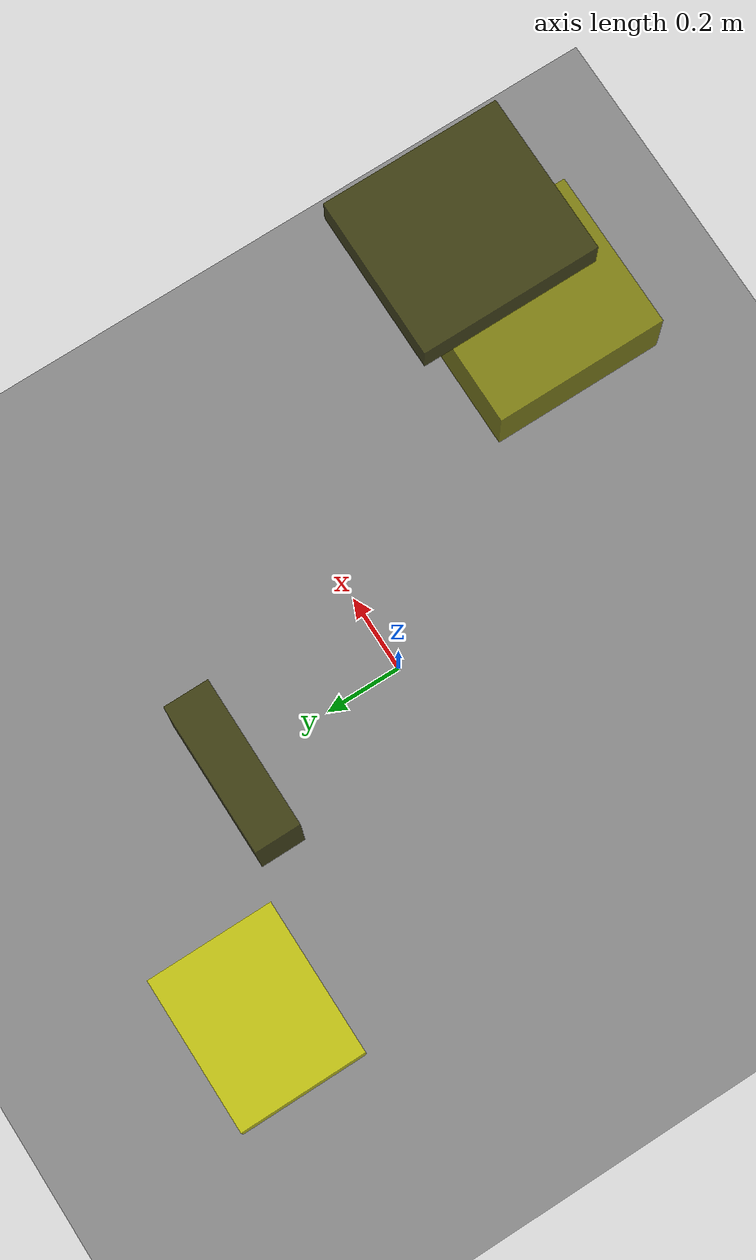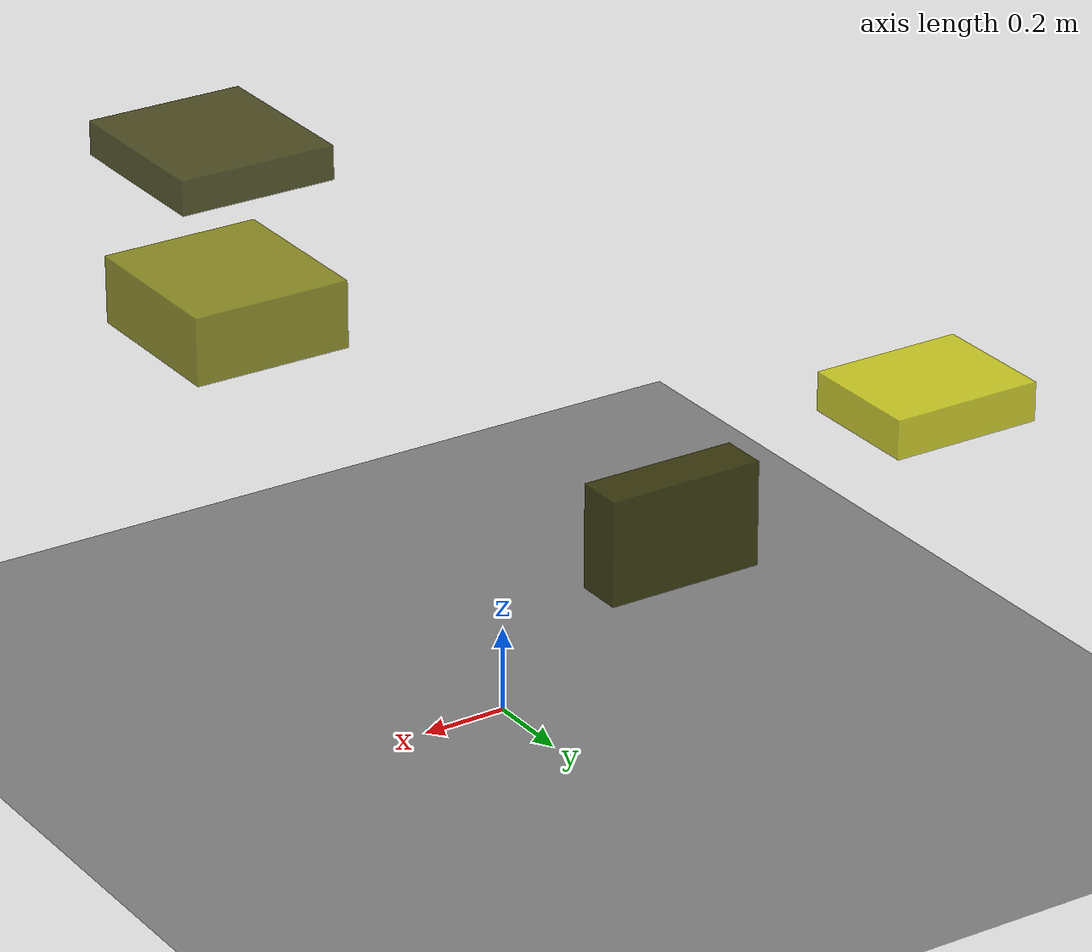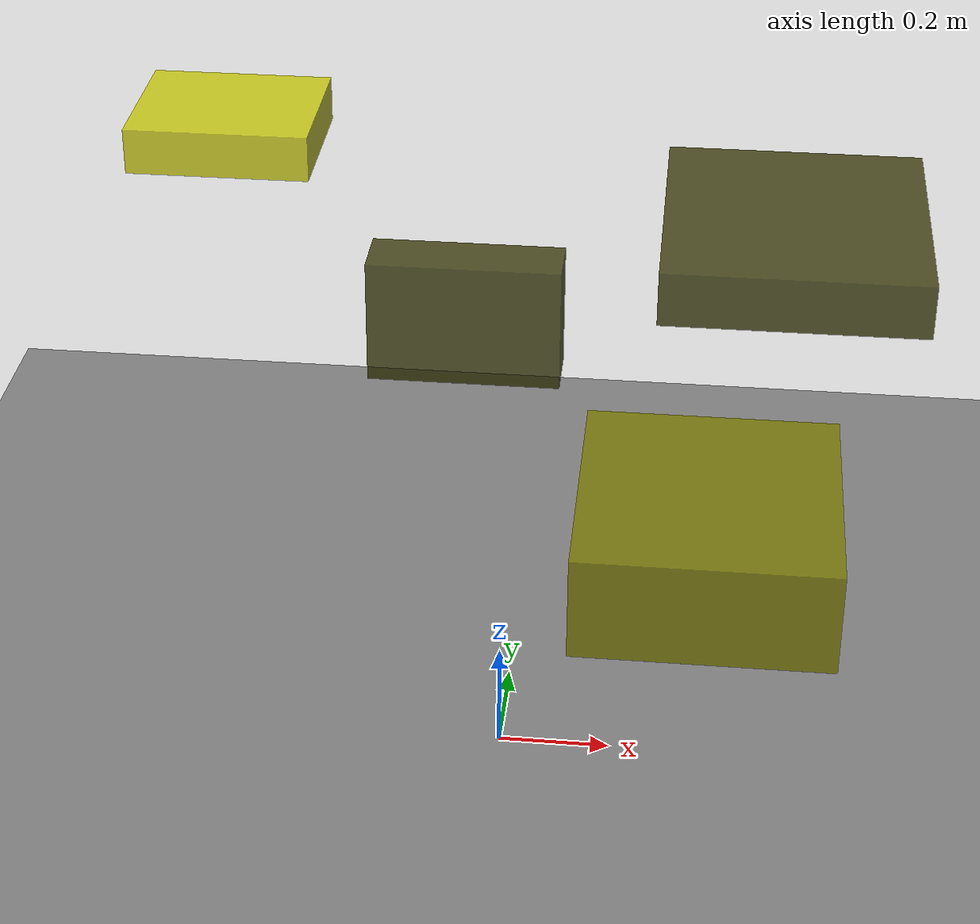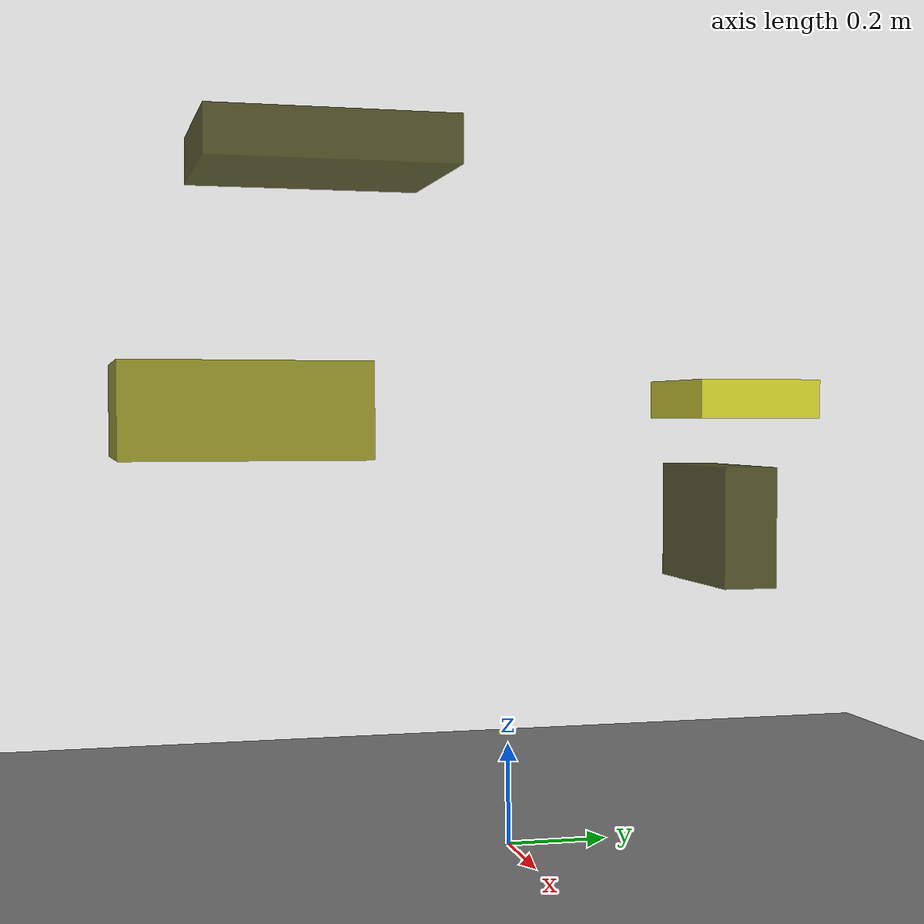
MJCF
<?xml version="1.0"?>
<mujoco model="obstacle_scene">
  <compiler angle="radian" coordinate="local"/>
  <option timestep="0.001" gravity="0 0 -9.81"/>

  <asset>
    <material name="obstacle_mat" rgba="0.8 0.8 0.0 0.8"/>
    <material name="ground_mat" rgba="0.5 0.5 0.5 1"/>
  </asset>

  <worldbody>
    <!-- Ground plane -->
    <geom name="ground" type="plane" size="3 3 0.1" material="ground_mat"/>

    <!-- Obstacles -->
    <body name="obstacle_0" pos="0.446092 -0.436071 1.270097">
      <geom name="obs_0" type="box" size="0.181368 0.199559 0.038825" rgba="0.2 0.2 0.0 0.8"/>
    </body>
    <body name="obstacle_1" pos="0.349344 -0.561902 0.850468">
      <geom name="obs_1" type="box" size="0.186534 0.200505 0.078966" rgba="0.5 0.5 0.0 0.8"/>
    </body>
    <body name="obstacle_2" pos="-0.593136 0.706931 0.881351">
      <geom name="obs_2" type="box" size="0.174444 0.143318 0.044356" rgba="0.8 0.8 0.0 0.8"/>
    </body>
    <body name="obstacle_3" pos="-0.112958 0.479835 0.619517">
      <geom name="obs_3" type="box" size="0.181226 0.054451 0.120433" rgba="0.2 0.2 0.0 0.8"/>
    </body>
  </worldbody>
</mujoco>
